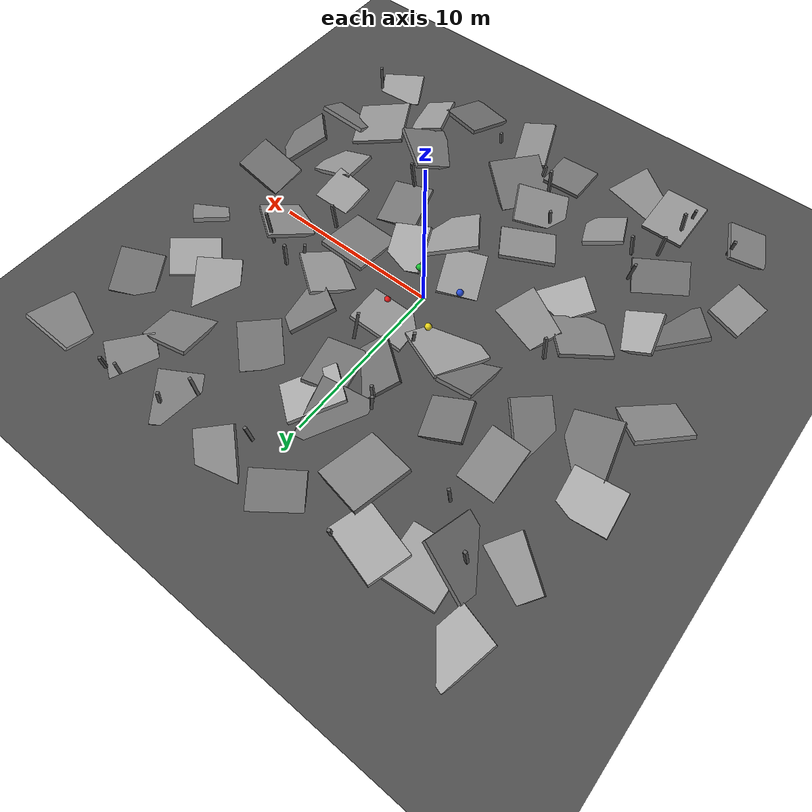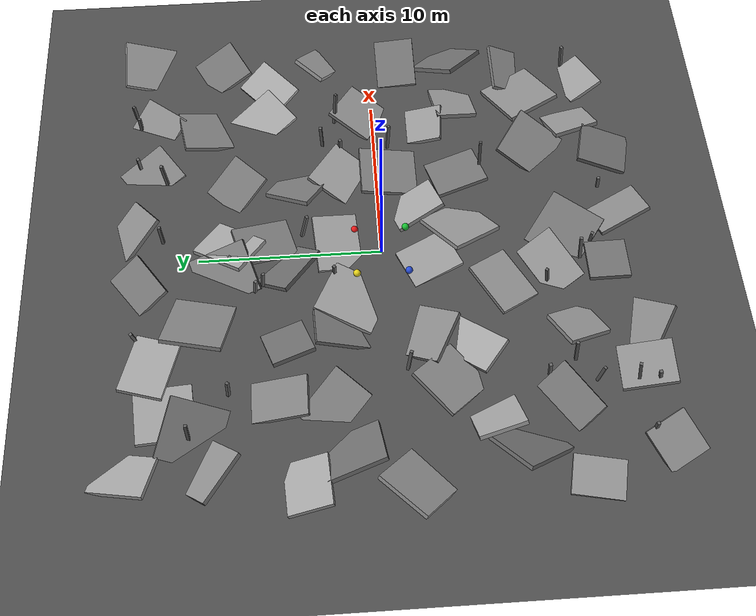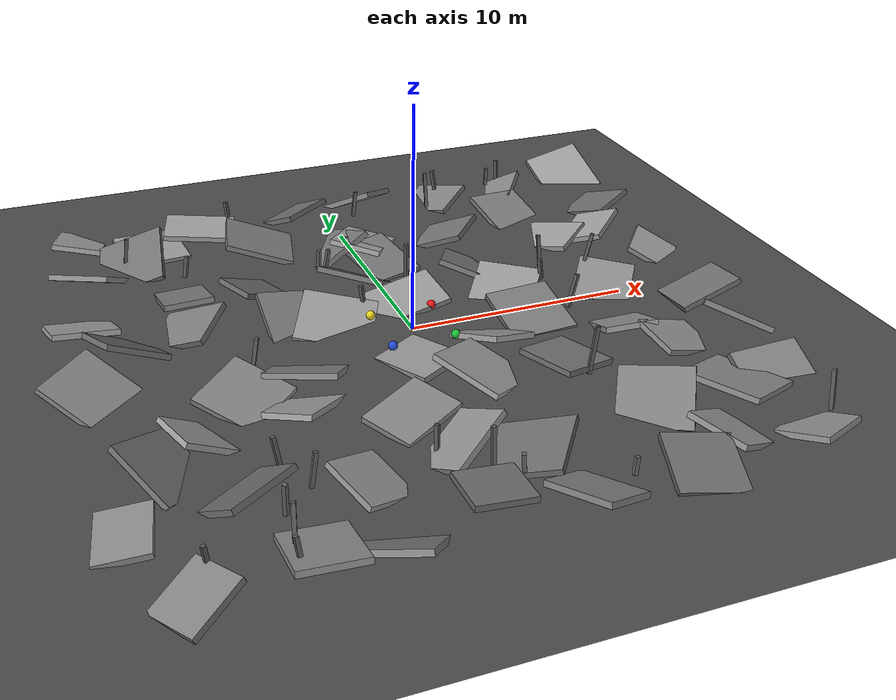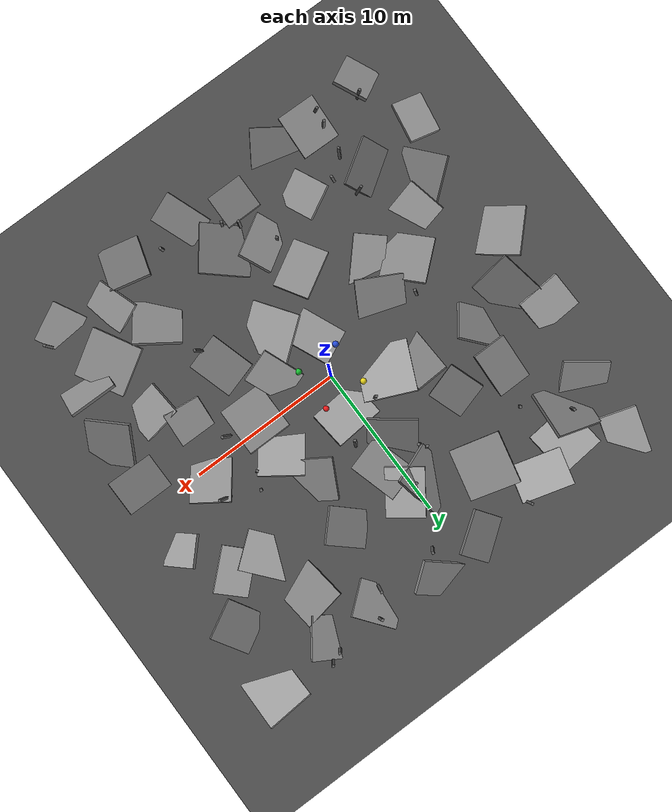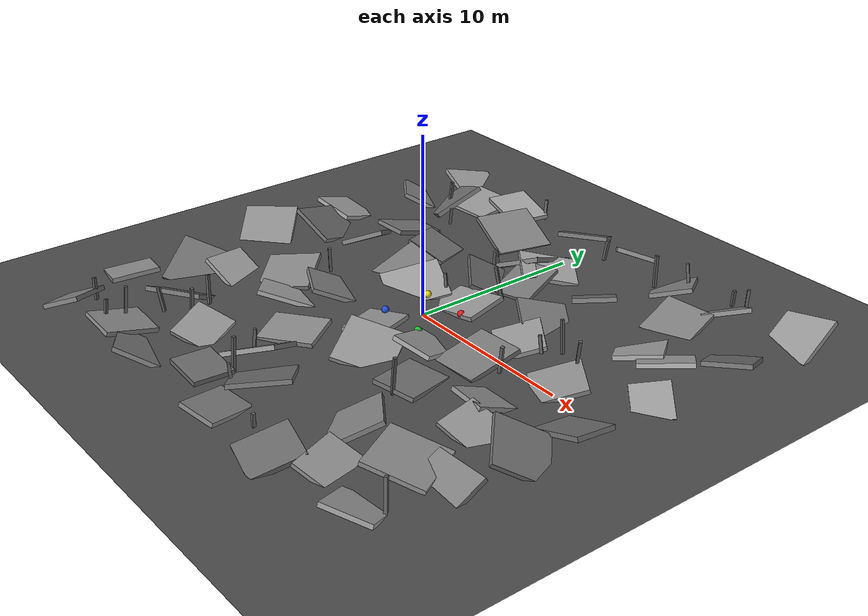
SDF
<?xml version="1.0"?>
<sdf version="1.6">
  <world name="rough_terrain">

    <!-- ==================== Physics ==================== -->
    <physics type="ode">
      <real_time_update_rate>1000.0</real_time_update_rate>
      <max_step_size>0.001</max_step_size>
      <real_time_factor>1</real_time_factor>
    </physics>

    <!-- ==================== Scene ==================== -->
    <scene>
      <ambient>0.55 0.55 0.55 1</ambient>
      <background>0.35 0.38 0.42 1</background>
      <shadows>true</shadows>
    </scene>

    <!-- ==================== Lighting ==================== -->
    <light name="sun" type="directional">
      <cast_shadows>true</cast_shadows>
      <pose>0 0 20 0 0 0</pose>
      <diffuse>0.85 0.85 0.85 1</diffuse>
      <specular>0.25 0.25 0.25 1</specular>
      <direction>-0.4 0.2 -1</direction>
    </light>
    <light name="sun_fill" type="directional">
      <cast_shadows>false</cast_shadows>
      <pose>0 0 15 0 0 0</pose>
      <diffuse>0.30 0.30 0.35 1</diffuse>
      <specular>0 0 0 1</specular>
      <direction>0.5 -0.3 -0.8</direction>
    </light>

    <!-- ==================== Gazebo ROS State Plugin ==================== -->
    <plugin name="gazebo_ros_state" filename="libgazebo_ros_state.so">
      <ros><namespace>/</namespace></ros>
    </plugin>

    <!-- ==================== Ground Plane ==================== -->
    <model name="ground_plane">
      <static>true</static>
      <link name="link">
        <collision name="collision">
          <geometry>
            <plane><normal>0 0 1</normal><size>100 100</size></plane>
          </geometry>
          <surface>
            <friction><ode><mu>1.0</mu><mu2>1.0</mu2></ode></friction>
          </surface>
        </collision>
        <visual name="visual">
          <cast_shadows>false</cast_shadows>
          <geometry>
            <plane><normal>0 0 1</normal><size>100 100</size></plane>
          </geometry>
          <material>
            <script>
              <uri>file://media/materials/scripts/gazebo.material</uri>
              <name>Gazebo/DarkGrey</name>
            </script>
          </material>
        </visual>
      </link>
    </model>

    <!-- ==================== Rough Terrain (slabs + spikes) ==================== -->
    <model name="rough_terrain">
      <static>true</static>
      <pose>0 0 0 0 0 0</pose>

      <link name="slab_0">
        <pose>-12.334 -13.893 0.430 0.1727 0.3833 -2.5953</pose>
        <collision name="col">
          <geometry><box><size>2.367 2.298 0.250</size></box></geometry>
          <surface><friction><ode><mu>0.9</mu><mu2>0.9</mu2></ode></friction></surface>
        </collision>
        <visual name="vis">
          <geometry><box><size>2.367 2.298 0.250</size></box></geometry>
          <material><ambient>0.517 0.517 0.517 1</ambient><diffuse>0.517 0.517 0.517 1</diffuse><specular>0.1 0.1 0.1 20</specular></material>
        </visual>
      </link>
      <link name="slab_1">
        <pose>-13.881 -9.776 0.134 0.1465 0.0439 -1.7565</pose>
        <collision name="col">
          <geometry><box><size>2.675 2.035 0.250</size></box></geometry>
          <surface><friction><ode><mu>0.9</mu><mu2>0.9</mu2></ode></friction></surface>
        </collision>
        <visual name="vis">
          <geometry><box><size>2.675 2.035 0.250</size></box></geometry>
          <material><ambient>0.556 0.556 0.556 1</ambient><diffuse>0.556 0.556 0.556 1</diffuse><specular>0.1 0.1 0.1 20</specular></material>
        </visual>
      </link>
      <link name="slab_2">
        <pose>-11.902 -6.690 0.212 -0.3367 0.4469 -1.0267</pose>
        <collision name="col">
          <geometry><box><size>3.076 2.932 0.250</size></box></geometry>
          <surface><friction><ode><mu>0.9</mu><mu2>0.9</mu2></ode></friction></surface>
        </collision>
        <visual name="vis">
          <geometry><box><size>3.076 2.932 0.250</size></box></geometry>
          <material><ambient>0.441 0.441 0.441 1</ambient><diffuse>0.441 0.441 0.441 1</diffuse><specular>0.1 0.1 0.1 20</specular></material>
        </visual>
      </link>
      <link name="slab_3">
        <pose>-13.711 -0.931 0.426 0.0354 0.4624 -0.7632</pose>
        <collision name="col">
          <geometry><box><size>2.806 3.078 0.250</size></box></geometry>
          <surface><friction><ode><mu>0.9</mu><mu2>0.9</mu2></ode></friction></surface>
        </collision>
        <visual name="vis">
          <geometry><box><size>2.806 3.078 0.250</size></box></geometry>
          <material><ambient>0.547 0.547 0.547 1</ambient><diffuse>0.547 0.547 0.547 1</diffuse><specular>0.1 0.1 0.1 20</specular></material>
        </visual>
      </link>
      <link name="slab_4">
        <pose>-11.852 2.113 0.392 -0.4439 -0.2659 -1.3233</pose>
        <collision name="col">
          <geometry><box><size>3.150 2.771 0.250</size></box></geometry>
          <surface><friction><ode><mu>0.9</mu><mu2>0.9</mu2></ode></friction></surface>
        </collision>
        <visual name="vis">
          <geometry><box><size>3.150 2.771 0.250</size></box></geometry>
          <material><ambient>0.438 0.438 0.438 1</ambient><diffuse>0.438 0.438 0.438 1</diffuse><specular>0.1 0.1 0.1 20</specular></material>
        </visual>
      </link>
      <link name="slab_5">
        <pose>-13.366 4.425 0.226 -0.1269 -0.2839 -1.4641</pose>
        <collision name="col">
          <geometry><box><size>2.371 2.849 0.250</size></box></geometry>
          <surface><friction><ode><mu>0.9</mu><mu2>0.9</mu2></ode></friction></surface>
        </collision>
        <visual name="vis">
          <geometry><box><size>2.371 2.849 0.250</size></box></geometry>
          <material><ambient>0.635 0.635 0.635 1</ambient><diffuse>0.635 0.635 0.635 1</diffuse><specular>0.1 0.1 0.1 20</specular></material>
        </visual>
      </link>
      <link name="slab_6">
        <pose>-12.312 9.339 0.115 -0.1178 0.4785 0.8796</pose>
        <collision name="col">
          <geometry><box><size>2.228 2.973 0.250</size></box></geometry>
          <surface><friction><ode><mu>0.9</mu><mu2>0.9</mu2></ode></friction></surface>
        </collision>
        <visual name="vis">
          <geometry><box><size>2.228 2.973 0.250</size></box></geometry>
          <material><ambient>0.548 0.548 0.548 1</ambient><diffuse>0.548 0.548 0.548 1</diffuse><specular>0.1 0.1 0.1 20</specular></material>
        </visual>
      </link>
      <link name="slab_7">
        <pose>-12.219 13.557 0.043 -0.1804 -0.2270 -1.8159</pose>
        <collision name="col">
          <geometry><box><size>3.036 2.306 0.250</size></box></geometry>
          <surface><friction><ode><mu>0.9</mu><mu2>0.9</mu2></ode></friction></surface>
        </collision>
        <visual name="vis">
          <geometry><box><size>3.036 2.306 0.250</size></box></geometry>
          <material><ambient>0.637 0.637 0.637 1</ambient><diffuse>0.637 0.637 0.637 1</diffuse><specular>0.1 0.1 0.1 20</specular></material>
        </visual>
      </link>
      <link name="slab_8">
        <pose>-8.107 -13.158 0.528 -0.0402 -0.2298 -1.5920</pose>
        <collision name="col">
          <geometry><box><size>2.875 2.528 0.250</size></box></geometry>
          <surface><friction><ode><mu>0.9</mu><mu2>0.9</mu2></ode></friction></surface>
        </collision>
        <visual name="vis">
          <geometry><box><size>2.875 2.528 0.250</size></box></geometry>
          <material><ambient>0.549 0.549 0.549 1</ambient><diffuse>0.549 0.549 0.549 1</diffuse><specular>0.1 0.1 0.1 20</specular></material>
        </visual>
      </link>
      <link name="slab_9">
        <pose>-9.665 -8.848 0.146 0.4863 0.0093 -2.5704</pose>
        <collision name="col">
          <geometry><box><size>3.199 2.533 0.250</size></box></geometry>
          <surface><friction><ode><mu>0.9</mu><mu2>0.9</mu2></ode></friction></surface>
        </collision>
        <visual name="vis">
          <geometry><box><size>3.199 2.533 0.250</size></box></geometry>
          <material><ambient>0.431 0.431 0.431 1</ambient><diffuse>0.431 0.431 0.431 1</diffuse><specular>0.1 0.1 0.1 20</specular></material>
        </visual>
      </link>
      <link name="slab_10">
        <pose>-10.053 -5.114 0.056 -0.1157 0.4849 0.1829</pose>
        <collision name="col">
          <geometry><box><size>3.057 2.564 0.250</size></box></geometry>
          <surface><friction><ode><mu>0.9</mu><mu2>0.9</mu2></ode></friction></surface>
        </collision>
        <visual name="vis">
          <geometry><box><size>3.057 2.564 0.250</size></box></geometry>
          <material><ambient>0.643 0.643 0.643 1</ambient><diffuse>0.643 0.643 0.643 1</diffuse><specular>0.1 0.1 0.1 20</specular></material>
        </visual>
      </link>
      <link name="slab_11">
        <pose>-8.147 -3.052 0.242 -0.2279 0.1378 -2.4407</pose>
        <collision name="col">
          <geometry><box><size>2.962 2.910 0.250</size></box></geometry>
          <surface><friction><ode><mu>0.9</mu><mu2>0.9</mu2></ode></friction></surface>
        </collision>
        <visual name="vis">
          <geometry><box><size>2.962 2.910 0.250</size></box></geometry>
          <material><ambient>0.520 0.520 0.520 1</ambient><diffuse>0.520 0.520 0.520 1</diffuse><specular>0.1 0.1 0.1 20</specular></material>
        </visual>
      </link>
      <link name="slab_12">
        <pose>-9.180 2.964 0.244 -0.3141 0.4033 2.3280</pose>
        <collision name="col">
          <geometry><box><size>3.169 2.352 0.250</size></box></geometry>
          <surface><friction><ode><mu>0.9</mu><mu2>0.9</mu2></ode></friction></surface>
        </collision>
        <visual name="vis">
          <geometry><box><size>3.169 2.352 0.250</size></box></geometry>
          <material><ambient>0.489 0.489 0.489 1</ambient><diffuse>0.489 0.489 0.489 1</diffuse><specular>0.1 0.1 0.1 20</specular></material>
        </visual>
      </link>
      <link name="slab_13">
        <pose>-8.710 5.714 0.276 0.2723 0.0297 -3.1380</pose>
        <collision name="col">
          <geometry><box><size>2.204 3.018 0.250</size></box></geometry>
          <surface><friction><ode><mu>0.9</mu><mu2>0.9</mu2></ode></friction></surface>
        </collision>
        <visual name="vis">
          <geometry><box><size>2.204 3.018 0.250</size></box></geometry>
          <material><ambient>0.495 0.495 0.495 1</ambient><diffuse>0.495 0.495 0.495 1</diffuse><specular>0.1 0.1 0.1 20</specular></material>
        </visual>
      </link>
      <link name="slab_14">
        <pose>-10.282 10.151 0.194 -0.4321 0.3695 2.8083</pose>
        <collision name="col">
          <geometry><box><size>3.173 3.110 0.250</size></box></geometry>
          <surface><friction><ode><mu>0.9</mu><mu2>0.9</mu2></ode></friction></surface>
        </collision>
        <visual name="vis">
          <geometry><box><size>3.173 3.110 0.250</size></box></geometry>
          <material><ambient>0.440 0.440 0.440 1</ambient><diffuse>0.440 0.440 0.440 1</diffuse><specular>0.1 0.1 0.1 20</specular></material>
        </visual>
      </link>
      <link name="slab_15">
        <pose>-9.098 11.594 0.096 -0.0242 0.0487 -1.4762</pose>
        <collision name="col">
          <geometry><box><size>3.015 3.022 0.250</size></box></geometry>
          <surface><friction><ode><mu>0.9</mu><mu2>0.9</mu2></ode></friction></surface>
        </collision>
        <visual name="vis">
          <geometry><box><size>3.015 3.022 0.250</size></box></geometry>
          <material><ambient>0.621 0.621 0.621 1</ambient><diffuse>0.621 0.621 0.621 1</diffuse><specular>0.1 0.1 0.1 20</specular></material>
        </visual>
      </link>
      <link name="slab_16">
        <pose>-5.633 -13.419 0.136 -0.1840 0.4840 0.9417</pose>
        <collision name="col">
          <geometry><box><size>2.720 2.974 0.250</size></box></geometry>
          <surface><friction><ode><mu>0.9</mu><mu2>0.9</mu2></ode></friction></surface>
        </collision>
        <visual name="vis">
          <geometry><box><size>2.720 2.974 0.250</size></box></geometry>
          <material><ambient>0.521 0.521 0.521 1</ambient><diffuse>0.521 0.521 0.521 1</diffuse><specular>0.1 0.1 0.1 20</specular></material>
        </visual>
      </link>
      <link name="slab_17">
        <pose>-5.393 -10.024 0.318 -0.2638 -0.2735 -2.6955</pose>
        <collision name="col">
          <geometry><box><size>2.300 2.451 0.250</size></box></geometry>
          <surface><friction><ode><mu>0.9</mu><mu2>0.9</mu2></ode></friction></surface>
        </collision>
        <visual name="vis">
          <geometry><box><size>2.300 2.451 0.250</size></box></geometry>
          <material><ambient>0.565 0.565 0.565 1</ambient><diffuse>0.565 0.565 0.565 1</diffuse><specular>0.1 0.1 0.1 20</specular></material>
        </visual>
      </link>
      <link name="slab_18">
        <pose>-6.125 -4.409 0.112 0.1652 -0.2793 -2.3103</pose>
        <collision name="col">
          <geometry><box><size>3.148 2.095 0.250</size></box></geometry>
          <surface><friction><ode><mu>0.9</mu><mu2>0.9</mu2></ode></friction></surface>
        </collision>
        <visual name="vis">
          <geometry><box><size>3.148 2.095 0.250</size></box></geometry>
          <material><ambient>0.635 0.635 0.635 1</ambient><diffuse>0.635 0.635 0.635 1</diffuse><specular>0.1 0.1 0.1 20</specular></material>
        </visual>
      </link>
      <link name="slab_19">
        <pose>-5.257 -1.882 0.081 -0.3940 -0.0674 -0.4802</pose>
        <collision name="col">
          <geometry><box><size>3.047 3.078 0.250</size></box></geometry>
          <surface><friction><ode><mu>0.9</mu><mu2>0.9</mu2></ode></friction></surface>
        </collision>
        <visual name="vis">
          <geometry><box><size>3.047 3.078 0.250</size></box></geometry>
          <material><ambient>0.527 0.527 0.527 1</ambient><diffuse>0.527 0.527 0.527 1</diffuse><specular>0.1 0.1 0.1 20</specular></material>
        </visual>
      </link>
      <link name="slab_20">
        <pose>-4.856 2.252 0.141 -0.1571 0.3535 -1.5792</pose>
        <collision name="col">
          <geometry><box><size>3.314 2.131 0.250</size></box></geometry>
          <surface><friction><ode><mu>0.9</mu><mu2>0.9</mu2></ode></friction></surface>
        </collision>
        <visual name="vis">
          <geometry><box><size>3.314 2.131 0.250</size></box></geometry>
          <material><ambient>0.464 0.464 0.464 1</ambient><diffuse>0.464 0.464 0.464 1</diffuse><specular>0.1 0.1 0.1 20</specular></material>
        </visual>
      </link>
      <link name="slab_21">
        <pose>-5.568 5.239 0.364 -0.0556 0.3532 0.3162</pose>
        <collision name="col">
          <geometry><box><size>2.372 2.333 0.250</size></box></geometry>
          <surface><friction><ode><mu>0.9</mu><mu2>0.9</mu2></ode></friction></surface>
        </collision>
        <visual name="vis">
          <geometry><box><size>2.372 2.333 0.250</size></box></geometry>
          <material><ambient>0.432 0.432 0.432 1</ambient><diffuse>0.432 0.432 0.432 1</diffuse><specular>0.1 0.1 0.1 20</specular></material>
        </visual>
      </link>
      <link name="slab_22">
        <pose>-4.171 9.915 0.429 -0.3261 -0.0140 -1.7986</pose>
        <collision name="col">
          <geometry><box><size>3.294 3.237 0.250</size></box></geometry>
          <surface><friction><ode><mu>0.9</mu><mu2>0.9</mu2></ode></friction></surface>
        </collision>
        <visual name="vis">
          <geometry><box><size>3.294 3.237 0.250</size></box></geometry>
          <material><ambient>0.512 0.512 0.512 1</ambient><diffuse>0.512 0.512 0.512 1</diffuse><specular>0.1 0.1 0.1 20</specular></material>
        </visual>
      </link>
      <link name="slab_23">
        <pose>-6.557 12.380 0.456 -0.0440 -0.0753 2.8734</pose>
        <collision name="col">
          <geometry><box><size>3.315 2.354 0.250</size></box></geometry>
          <surface><friction><ode><mu>0.9</mu><mu2>0.9</mu2></ode></friction></surface>
        </collision>
        <visual name="vis">
          <geometry><box><size>3.315 2.354 0.250</size></box></geometry>
          <material><ambient>0.649 0.649 0.649 1</ambient><diffuse>0.649 0.649 0.649 1</diffuse><specular>0.1 0.1 0.1 20</specular></material>
        </visual>
      </link>
      <link name="slab_24">
        <pose>-1.671 -12.133 0.537 0.0774 0.0412 1.5581</pose>
        <collision name="col">
          <geometry><box><size>2.207 2.396 0.250</size></box></geometry>
          <surface><friction><ode><mu>0.9</mu><mu2>0.9</mu2></ode></friction></surface>
        </collision>
        <visual name="vis">
          <geometry><box><size>2.207 2.396 0.250</size></box></geometry>
          <material><ambient>0.433 0.433 0.433 1</ambient><diffuse>0.433 0.433 0.433 1</diffuse><specular>0.1 0.1 0.1 20</specular></material>
        </visual>
      </link>
      <link name="slab_25">
        <pose>-1.599 -9.055 0.430 -0.4104 -0.3071 0.5971</pose>
        <collision name="col">
          <geometry><box><size>3.138 2.210 0.250</size></box></geometry>
          <surface><friction><ode><mu>0.9</mu><mu2>0.9</mu2></ode></friction></surface>
        </collision>
        <visual name="vis">
          <geometry><box><size>3.138 2.210 0.250</size></box></geometry>
          <material><ambient>0.575 0.575 0.575 1</ambient><diffuse>0.575 0.575 0.575 1</diffuse><specular>0.1 0.1 0.1 20</specular></material>
        </visual>
      </link>
      <link name="slab_26">
        <pose>-2.484 -6.402 0.227 0.1167 -0.0789 0.5257</pose>
        <collision name="col">
          <geometry><box><size>3.189 2.329 0.250</size></box></geometry>
          <surface><friction><ode><mu>0.9</mu><mu2>0.9</mu2></ode></friction></surface>
        </collision>
        <visual name="vis">
          <geometry><box><size>3.189 2.329 0.250</size></box></geometry>
          <material><ambient>0.540 0.540 0.540 1</ambient><diffuse>0.540 0.540 0.540 1</diffuse><specular>0.1 0.1 0.1 20</specular></material>
        </visual>
      </link>
      <link name="slab_27">
        <pose>-0.709 -2.563 0.101 0.0893 -0.1040 -1.1550</pose>
        <collision name="col">
          <geometry><box><size>2.956 2.319 0.250</size></box></geometry>
          <surface><friction><ode><mu>0.9</mu><mu2>0.9</mu2></ode></friction></surface>
        </collision>
        <visual name="vis">
          <geometry><box><size>2.956 2.319 0.250</size></box></geometry>
          <material><ambient>0.593 0.593 0.593 1</ambient><diffuse>0.593 0.593 0.593 1</diffuse><specular>0.1 0.1 0.1 20</specular></material>
        </visual>
      </link>
      <link name="slab_28">
        <pose>-2.897 1.707 0.041 -0.1885 -0.1543 2.7222</pose>
        <collision name="col">
          <geometry><box><size>3.333 3.330 0.250</size></box></geometry>
          <surface><friction><ode><mu>0.9</mu><mu2>0.9</mu2></ode></friction></surface>
        </collision>
        <visual name="vis">
          <geometry><box><size>3.333 3.330 0.250</size></box></geometry>
          <material><ambient>0.623 0.623 0.623 1</ambient><diffuse>0.623 0.623 0.623 1</diffuse><specular>0.1 0.1 0.1 20</specular></material>
        </visual>
      </link>
      <link name="slab_29">
        <pose>-0.850 5.106 0.223 0.1092 0.4762 0.9675</pose>
        <collision name="col">
          <geometry><box><size>2.211 3.113 0.250</size></box></geometry>
          <surface><friction><ode><mu>0.9</mu><mu2>0.9</mu2></ode></friction></surface>
        </collision>
        <visual name="vis">
          <geometry><box><size>2.211 3.113 0.250</size></box></geometry>
          <material><ambient>0.422 0.422 0.422 1</ambient><diffuse>0.422 0.422 0.422 1</diffuse><specular>0.1 0.1 0.1 20</specular></material>
        </visual>
      </link>
      <link name="slab_30">
        <pose>-1.008 8.553 0.079 -0.3759 -0.3841 0.3344</pose>
        <collision name="col">
          <geometry><box><size>2.886 3.253 0.250</size></box></geometry>
          <surface><friction><ode><mu>0.9</mu><mu2>0.9</mu2></ode></friction></surface>
        </collision>
        <visual name="vis">
          <geometry><box><size>2.886 3.253 0.250</size></box></geometry>
          <material><ambient>0.483 0.483 0.483 1</ambient><diffuse>0.483 0.483 0.483 1</diffuse><specular>0.1 0.1 0.1 20</specular></material>
        </visual>
      </link>
      <link name="slab_31">
        <pose>-1.546 13.240 0.170 -0.0112 0.3962 2.1746</pose>
        <collision name="col">
          <geometry><box><size>2.272 2.847 0.250</size></box></geometry>
          <surface><friction><ode><mu>0.9</mu><mu2>0.9</mu2></ode></friction></surface>
        </collision>
        <visual name="vis">
          <geometry><box><size>2.272 2.847 0.250</size></box></geometry>
          <material><ambient>0.441 0.441 0.441 1</ambient><diffuse>0.441 0.441 0.441 1</diffuse><specular>0.1 0.1 0.1 20</specular></material>
        </visual>
      </link>
      <link name="slab_32">
        <pose>1.619 -13.254 0.375 -0.2327 0.2358 0.3247</pose>
        <collision name="col">
          <geometry><box><size>2.005 3.029 0.250</size></box></geometry>
          <surface><friction><ode><mu>0.9</mu><mu2>0.9</mu2></ode></friction></surface>
        </collision>
        <visual name="vis">
          <geometry><box><size>2.005 3.029 0.250</size></box></geometry>
          <material><ambient>0.518 0.518 0.518 1</ambient><diffuse>0.518 0.518 0.518 1</diffuse><specular>0.1 0.1 0.1 20</specular></material>
        </visual>
      </link>
      <link name="slab_33">
        <pose>0.568 -10.140 0.273 0.3270 0.0806 -2.2111</pose>
        <collision name="col">
          <geometry><box><size>3.179 3.207 0.250</size></box></geometry>
          <surface><friction><ode><mu>0.9</mu><mu2>0.9</mu2></ode></friction></surface>
        </collision>
        <visual name="vis">
          <geometry><box><size>3.179 3.207 0.250</size></box></geometry>
          <material><ambient>0.449 0.449 0.449 1</ambient><diffuse>0.449 0.449 0.449 1</diffuse><specular>0.1 0.1 0.1 20</specular></material>
        </visual>
      </link>
      <link name="slab_34">
        <pose>1.326 -4.425 0.260 -0.2618 -0.2262 -2.4957</pose>
        <collision name="col">
          <geometry><box><size>3.063 3.149 0.250</size></box></geometry>
          <surface><friction><ode><mu>0.9</mu><mu2>0.9</mu2></ode></friction></surface>
        </collision>
        <visual name="vis">
          <geometry><box><size>3.063 3.149 0.250</size></box></geometry>
          <material><ambient>0.599 0.599 0.599 1</ambient><diffuse>0.599 0.599 0.599 1</diffuse><specular>0.1 0.1 0.1 20</specular></material>
        </visual>
      </link>
      <link name="slab_35">
        <pose>2.787 -2.050 0.231 0.2466 0.3221 1.9526</pose>
        <collision name="col">
          <geometry><box><size>2.829 2.206 0.250</size></box></geometry>
          <surface><friction><ode><mu>0.9</mu><mu2>0.9</mu2></ode></friction></surface>
        </collision>
        <visual name="vis">
          <geometry><box><size>2.829 2.206 0.250</size></box></geometry>
          <material><ambient>0.623 0.623 0.623 1</ambient><diffuse>0.623 0.623 0.623 1</diffuse><specular>0.1 0.1 0.1 20</specular></material>
        </visual>
      </link>
      <link name="slab_36">
        <pose>0.607 2.413 0.175 0.1771 0.1511 -1.4652</pose>
        <collision name="col">
          <geometry><box><size>2.443 3.243 0.250</size></box></geometry>
          <surface><friction><ode><mu>0.9</mu><mu2>0.9</mu2></ode></friction></surface>
        </collision>
        <visual name="vis">
          <geometry><box><size>2.443 3.243 0.250</size></box></geometry>
          <material><ambient>0.601 0.601 0.601 1</ambient><diffuse>0.601 0.601 0.601 1</diffuse><specular>0.1 0.1 0.1 20</specular></material>
        </visual>
      </link>
      <link name="slab_37">
        <pose>0.818 6.382 0.291 -0.0388 -0.1904 1.8557</pose>
        <collision name="col">
          <geometry><box><size>3.146 2.297 0.250</size></box></geometry>
          <surface><friction><ode><mu>0.9</mu><mu2>0.9</mu2></ode></friction></surface>
        </collision>
        <visual name="vis">
          <geometry><box><size>3.146 2.297 0.250</size></box></geometry>
          <material><ambient>0.472 0.472 0.472 1</ambient><diffuse>0.472 0.472 0.472 1</diffuse><specular>0.1 0.1 0.1 20</specular></material>
        </visual>
      </link>
      <link name="slab_38">
        <pose>0.604 8.284 0.403 -0.2159 0.1383 -0.6303</pose>
        <collision name="col">
          <geometry><box><size>2.438 3.154 0.250</size></box></geometry>
          <surface><friction><ode><mu>0.9</mu><mu2>0.9</mu2></ode></friction></surface>
        </collision>
        <visual name="vis">
          <geometry><box><size>2.438 3.154 0.250</size></box></geometry>
          <material><ambient>0.646 0.646 0.646 1</ambient><diffuse>0.646 0.646 0.646 1</diffuse><specular>0.1 0.1 0.1 20</specular></material>
        </visual>
      </link>
      <link name="slab_39">
        <pose>1.904 13.802 0.123 0.4521 -0.2292 -2.4605</pose>
        <collision name="col">
          <geometry><box><size>2.154 3.295 0.250</size></box></geometry>
          <surface><friction><ode><mu>0.9</mu><mu2>0.9</mu2></ode></friction></surface>
        </collision>
        <visual name="vis">
          <geometry><box><size>2.154 3.295 0.250</size></box></geometry>
          <material><ambient>0.520 0.520 0.520 1</ambient><diffuse>0.520 0.520 0.520 1</diffuse><specular>0.1 0.1 0.1 20</specular></material>
        </visual>
      </link>
      <link name="slab_40">
        <pose>6.017 -13.160 0.237 0.0749 -0.2397 1.3118</pose>
        <collision name="col">
          <geometry><box><size>2.809 2.683 0.250</size></box></geometry>
          <surface><friction><ode><mu>0.9</mu><mu2>0.9</mu2></ode></friction></surface>
        </collision>
        <visual name="vis">
          <geometry><box><size>2.809 2.683 0.250</size></box></geometry>
          <material><ambient>0.420 0.420 0.420 1</ambient><diffuse>0.420 0.420 0.420 1</diffuse><specular>0.1 0.1 0.1 20</specular></material>
        </visual>
      </link>
      <link name="slab_41">
        <pose>6.517 -8.965 0.352 -0.1327 -0.4203 1.0319</pose>
        <collision name="col">
          <geometry><box><size>2.960 2.991 0.250</size></box></geometry>
          <surface><friction><ode><mu>0.9</mu><mu2>0.9</mu2></ode></friction></surface>
        </collision>
        <visual name="vis">
          <geometry><box><size>2.960 2.991 0.250</size></box></geometry>
          <material><ambient>0.496 0.496 0.496 1</ambient><diffuse>0.496 0.496 0.496 1</diffuse><specular>0.1 0.1 0.1 20</specular></material>
        </visual>
      </link>
      <link name="slab_42">
        <pose>4.965 -4.554 0.129 -0.0895 -0.0954 -1.2839</pose>
        <collision name="col">
          <geometry><box><size>2.961 2.401 0.250</size></box></geometry>
          <surface><friction><ode><mu>0.9</mu><mu2>0.9</mu2></ode></friction></surface>
        </collision>
        <visual name="vis">
          <geometry><box><size>2.961 2.401 0.250</size></box></geometry>
          <material><ambient>0.449 0.449 0.449 1</ambient><diffuse>0.449 0.449 0.449 1</diffuse><specular>0.1 0.1 0.1 20</specular></material>
        </visual>
      </link>
      <link name="slab_43">
        <pose>5.236 -0.695 0.200 -0.1945 0.0469 -3.1390</pose>
        <collision name="col">
          <geometry><box><size>2.904 3.205 0.250</size></box></geometry>
          <surface><friction><ode><mu>0.9</mu><mu2>0.9</mu2></ode></friction></surface>
        </collision>
        <visual name="vis">
          <geometry><box><size>2.904 3.205 0.250</size></box></geometry>
          <material><ambient>0.486 0.486 0.486 1</ambient><diffuse>0.486 0.486 0.486 1</diffuse><specular>0.1 0.1 0.1 20</specular></material>
        </visual>
      </link>
      <link name="slab_44">
        <pose>5.260 2.015 0.156 -0.2798 -0.0262 2.5207</pose>
        <collision name="col">
          <geometry><box><size>2.874 2.621 0.250</size></box></geometry>
          <surface><friction><ode><mu>0.9</mu><mu2>0.9</mu2></ode></friction></surface>
        </collision>
        <visual name="vis">
          <geometry><box><size>2.874 2.621 0.250</size></box></geometry>
          <material><ambient>0.603 0.603 0.603 1</ambient><diffuse>0.603 0.603 0.603 1</diffuse><specular>0.1 0.1 0.1 20</specular></material>
        </visual>
      </link>
      <link name="slab_45">
        <pose>4.599 4.384 0.133 0.3112 0.2455 1.0857</pose>
        <collision name="col">
          <geometry><box><size>2.688 2.845 0.250</size></box></geometry>
          <surface><friction><ode><mu>0.9</mu><mu2>0.9</mu2></ode></friction></surface>
        </collision>
        <visual name="vis">
          <geometry><box><size>2.688 2.845 0.250</size></box></geometry>
          <material><ambient>0.472 0.472 0.472 1</ambient><diffuse>0.472 0.472 0.472 1</diffuse><specular>0.1 0.1 0.1 20</specular></material>
        </visual>
      </link>
      <link name="slab_46">
        <pose>4.674 7.856 0.382 -0.4175 -0.0836 0.8153</pose>
        <collision name="col">
          <geometry><box><size>2.327 2.634 0.250</size></box></geometry>
          <surface><friction><ode><mu>0.9</mu><mu2>0.9</mu2></ode></friction></surface>
        </collision>
        <visual name="vis">
          <geometry><box><size>2.327 2.634 0.250</size></box></geometry>
          <material><ambient>0.465 0.465 0.465 1</ambient><diffuse>0.465 0.465 0.465 1</diffuse><specular>0.1 0.1 0.1 20</specular></material>
        </visual>
      </link>
      <link name="slab_47">
        <pose>5.936 12.673 0.028 0.2453 0.2639 -2.4719</pose>
        <collision name="col">
          <geometry><box><size>2.326 2.876 0.250</size></box></geometry>
          <surface><friction><ode><mu>0.9</mu><mu2>0.9</mu2></ode></friction></surface>
        </collision>
        <visual name="vis">
          <geometry><box><size>2.326 2.876 0.250</size></box></geometry>
          <material><ambient>0.518 0.518 0.518 1</ambient><diffuse>0.518 0.518 0.518 1</diffuse><specular>0.1 0.1 0.1 20</specular></material>
        </visual>
      </link>
      <link name="slab_48">
        <pose>8.240 -11.525 0.162 0.3405 -0.0426 1.8939</pose>
        <collision name="col">
          <geometry><box><size>2.691 2.067 0.250</size></box></geometry>
          <surface><friction><ode><mu>0.9</mu><mu2>0.9</mu2></ode></friction></surface>
        </collision>
        <visual name="vis">
          <geometry><box><size>2.691 2.067 0.250</size></box></geometry>
          <material><ambient>0.574 0.574 0.574 1</ambient><diffuse>0.574 0.574 0.574 1</diffuse><specular>0.1 0.1 0.1 20</specular></material>
        </visual>
      </link>
      <link name="slab_49">
        <pose>10.301 -8.820 0.362 0.2143 0.0047 2.0770</pose>
        <collision name="col">
          <geometry><box><size>3.268 3.190 0.250</size></box></geometry>
          <surface><friction><ode><mu>0.9</mu><mu2>0.9</mu2></ode></friction></surface>
        </collision>
        <visual name="vis">
          <geometry><box><size>3.268 3.190 0.250</size></box></geometry>
          <material><ambient>0.546 0.546 0.546 1</ambient><diffuse>0.546 0.546 0.546 1</diffuse><specular>0.1 0.1 0.1 20</specular></material>
        </visual>
      </link>
      <link name="slab_50">
        <pose>10.070 -4.819 0.146 0.1345 0.2598 0.1338</pose>
        <collision name="col">
          <geometry><box><size>2.634 2.346 0.250</size></box></geometry>
          <surface><friction><ode><mu>0.9</mu><mu2>0.9</mu2></ode></friction></surface>
        </collision>
        <visual name="vis">
          <geometry><box><size>2.634 2.346 0.250</size></box></geometry>
          <material><ambient>0.564 0.564 0.564 1</ambient><diffuse>0.564 0.564 0.564 1</diffuse><specular>0.1 0.1 0.1 20</specular></material>
        </visual>
      </link>
      <link name="slab_51">
        <pose>8.491 -2.885 0.157 0.0392 -0.3534 -1.6885</pose>
        <collision name="col">
          <geometry><box><size>2.381 2.363 0.250</size></box></geometry>
          <surface><friction><ode><mu>0.9</mu><mu2>0.9</mu2></ode></friction></surface>
        </collision>
        <visual name="vis">
          <geometry><box><size>2.381 2.363 0.250</size></box></geometry>
          <material><ambient>0.580 0.580 0.580 1</ambient><diffuse>0.580 0.580 0.580 1</diffuse><specular>0.1 0.1 0.1 20</specular></material>
        </visual>
      </link>
      <link name="slab_52">
        <pose>9.586 0.707 0.206 -0.2865 -0.0781 2.5437</pose>
        <collision name="col">
          <geometry><box><size>2.544 2.724 0.250</size></box></geometry>
          <surface><friction><ode><mu>0.9</mu><mu2>0.9</mu2></ode></friction></surface>
        </collision>
        <visual name="vis">
          <geometry><box><size>2.544 2.724 0.250</size></box></geometry>
          <material><ambient>0.554 0.554 0.554 1</ambient><diffuse>0.554 0.554 0.554 1</diffuse><specular>0.1 0.1 0.1 20</specular></material>
        </visual>
      </link>
      <link name="slab_53">
        <pose>9.559 6.343 0.028 -0.1449 0.2477 2.2208</pose>
        <collision name="col">
          <geometry><box><size>3.022 2.508 0.250</size></box></geometry>
          <surface><friction><ode><mu>0.9</mu><mu2>0.9</mu2></ode></friction></surface>
        </collision>
        <visual name="vis">
          <geometry><box><size>3.022 2.508 0.250</size></box></geometry>
          <material><ambient>0.639 0.639 0.639 1</ambient><diffuse>0.639 0.639 0.639 1</diffuse><specular>0.1 0.1 0.1 20</specular></material>
        </visual>
      </link>
      <link name="slab_54">
        <pose>8.857 9.691 0.146 -0.2742 -0.0627 -2.9592</pose>
        <collision name="col">
          <geometry><box><size>2.729 2.805 0.250</size></box></geometry>
          <surface><friction><ode><mu>0.9</mu><mu2>0.9</mu2></ode></friction></surface>
        </collision>
        <visual name="vis">
          <geometry><box><size>2.729 2.805 0.250</size></box></geometry>
          <material><ambient>0.497 0.497 0.497 1</ambient><diffuse>0.497 0.497 0.497 1</diffuse><specular>0.1 0.1 0.1 20</specular></material>
        </visual>
      </link>
      <link name="slab_55">
        <pose>9.517 12.445 0.095 0.1195 -0.4623 -0.6659</pose>
        <collision name="col">
          <geometry><box><size>2.220 2.624 0.250</size></box></geometry>
          <surface><friction><ode><mu>0.9</mu><mu2>0.9</mu2></ode></friction></surface>
        </collision>
        <visual name="vis">
          <geometry><box><size>2.220 2.624 0.250</size></box></geometry>
          <material><ambient>0.550 0.550 0.550 1</ambient><diffuse>0.550 0.550 0.550 1</diffuse><specular>0.1 0.1 0.1 20</specular></material>
        </visual>
      </link>
      <link name="slab_56">
        <pose>11.488 -12.325 0.053 -0.1182 -0.2818 -1.0880</pose>
        <collision name="col">
          <geometry><box><size>2.181 2.616 0.250</size></box></geometry>
          <surface><friction><ode><mu>0.9</mu><mu2>0.9</mu2></ode></friction></surface>
        </collision>
        <visual name="vis">
          <geometry><box><size>2.181 2.616 0.250</size></box></geometry>
          <material><ambient>0.595 0.595 0.595 1</ambient><diffuse>0.595 0.595 0.595 1</diffuse><specular>0.1 0.1 0.1 20</specular></material>
        </visual>
      </link>
      <link name="slab_57">
        <pose>12.381 -8.423 0.070 -0.4697 0.0385 3.1410</pose>
        <collision name="col">
          <geometry><box><size>3.111 2.337 0.250</size></box></geometry>
          <surface><friction><ode><mu>0.9</mu><mu2>0.9</mu2></ode></friction></surface>
        </collision>
        <visual name="vis">
          <geometry><box><size>3.111 2.337 0.250</size></box></geometry>
          <material><ambient>0.500 0.500 0.500 1</ambient><diffuse>0.500 0.500 0.500 1</diffuse><specular>0.1 0.1 0.1 20</specular></material>
        </visual>
      </link>
      <link name="slab_58">
        <pose>13.068 -4.724 0.547 -0.2938 -0.4688 -2.1841</pose>
        <collision name="col">
          <geometry><box><size>2.870 3.007 0.250</size></box></geometry>
          <surface><friction><ode><mu>0.9</mu><mu2>0.9</mu2></ode></friction></surface>
        </collision>
        <visual name="vis">
          <geometry><box><size>2.870 3.007 0.250</size></box></geometry>
          <material><ambient>0.449 0.449 0.449 1</ambient><diffuse>0.449 0.449 0.449 1</diffuse><specular>0.1 0.1 0.1 20</specular></material>
        </visual>
      </link>
      <link name="slab_59">
        <pose>13.118 -1.650 0.447 -0.3247 0.1048 1.5578</pose>
        <collision name="col">
          <geometry><box><size>2.291 2.934 0.250</size></box></geometry>
          <surface><friction><ode><mu>0.9</mu><mu2>0.9</mu2></ode></friction></surface>
        </collision>
        <visual name="vis">
          <geometry><box><size>2.291 2.934 0.250</size></box></geometry>
          <material><ambient>0.446 0.446 0.446 1</ambient><diffuse>0.446 0.446 0.446 1</diffuse><specular>0.1 0.1 0.1 20</specular></material>
        </visual>
      </link>
      <link name="slab_60">
        <pose>13.498 2.992 0.197 0.1733 0.4478 -0.6493</pose>
        <collision name="col">
          <geometry><box><size>2.144 2.034 0.250</size></box></geometry>
          <surface><friction><ode><mu>0.9</mu><mu2>0.9</mu2></ode></friction></surface>
        </collision>
        <visual name="vis">
          <geometry><box><size>2.144 2.034 0.250</size></box></geometry>
          <material><ambient>0.584 0.584 0.584 1</ambient><diffuse>0.584 0.584 0.584 1</diffuse><specular>0.1 0.1 0.1 20</specular></material>
        </visual>
      </link>
      <link name="slab_61">
        <pose>11.612 5.921 0.450 0.3424 0.0981 -2.3810</pose>
        <collision name="col">
          <geometry><box><size>2.837 2.136 0.250</size></box></geometry>
          <surface><friction><ode><mu>0.9</mu><mu2>0.9</mu2></ode></friction></surface>
        </collision>
        <visual name="vis">
          <geometry><box><size>2.837 2.136 0.250</size></box></geometry>
          <material><ambient>0.646 0.646 0.646 1</ambient><diffuse>0.646 0.646 0.646 1</diffuse><specular>0.1 0.1 0.1 20</specular></material>
        </visual>
      </link>
      <link name="slab_62">
        <pose>13.405 8.675 0.303 -0.1552 0.3417 2.0253</pose>
        <collision name="col">
          <geometry><box><size>2.572 2.495 0.250</size></box></geometry>
          <surface><friction><ode><mu>0.9</mu><mu2>0.9</mu2></ode></friction></surface>
        </collision>
        <visual name="vis">
          <geometry><box><size>2.572 2.495 0.250</size></box></geometry>
          <material><ambient>0.444 0.444 0.444 1</ambient><diffuse>0.444 0.444 0.444 1</diffuse><specular>0.1 0.1 0.1 20</specular></material>
        </visual>
      </link>
      <link name="slab_63">
        <pose>13.857 13.032 0.265 0.2285 0.4549 -1.4446</pose>
        <collision name="col">
          <geometry><box><size>3.106 2.944 0.250</size></box></geometry>
          <surface><friction><ode><mu>0.9</mu><mu2>0.9</mu2></ode></friction></surface>
        </collision>
        <visual name="vis">
          <geometry><box><size>3.106 2.944 0.250</size></box></geometry>
          <material><ambient>0.606 0.606 0.606 1</ambient><diffuse>0.606 0.606 0.606 1</diffuse><specular>0.1 0.1 0.1 20</specular></material>
        </visual>
      </link>
      <link name="spike_0">
        <pose>-1.804 6.469 0.689 0.1266 0.1191 0.2723</pose>
        <collision name="col">
          <geometry><box><size>0.160 0.160 0.956</size></box></geometry>
        </collision>
        <visual name="vis">
          <geometry><box><size>0.160 0.160 0.956</size></box></geometry>
          <material><ambient>0.412 0.412 0.412 1</ambient><diffuse>0.412 0.412 0.412 1</diffuse><specular>0.05 0.05 0.05 10</specular></material>
        </visual>
      </link>
      <link name="spike_1">
        <pose>-7.172 -0.988 0.749 -0.0436 -0.1697 2.6733</pose>
        <collision name="col">
          <geometry><box><size>0.160 0.160 1.538</size></box></geometry>
        </collision>
        <visual name="vis">
          <geometry><box><size>0.160 0.160 1.538</size></box></geometry>
          <material><ambient>0.410 0.410 0.410 1</ambient><diffuse>0.410 0.410 0.410 1</diffuse><specular>0.05 0.05 0.05 10</specular></material>
        </visual>
      </link>
      <link name="spike_2">
        <pose>-8.061 8.339 0.463 0.1369 0.0724 0.8679</pose>
        <collision name="col">
          <geometry><box><size>0.160 0.160 1.079</size></box></geometry>
        </collision>
        <visual name="vis">
          <geometry><box><size>0.160 0.160 1.079</size></box></geometry>
          <material><ambient>0.369 0.369 0.369 1</ambient><diffuse>0.369 0.369 0.369 1</diffuse><specular>0.05 0.05 0.05 10</specular></material>
        </visual>
      </link>
      <link name="spike_3">
        <pose>12.546 -11.603 0.995 -0.0041 0.0929 2.1696</pose>
        <collision name="col">
          <geometry><box><size>0.160 0.160 1.724</size></box></geometry>
        </collision>
        <visual name="vis">
          <geometry><box><size>0.160 0.160 1.724</size></box></geometry>
          <material><ambient>0.405 0.405 0.405 1</ambient><diffuse>0.405 0.405 0.405 1</diffuse><specular>0.05 0.05 0.05 10</specular></material>
        </visual>
      </link>
      <link name="spike_4">
        <pose>-0.257 8.202 0.441 -0.1002 0.0690 0.9620</pose>
        <collision name="col">
          <geometry><box><size>0.160 0.160 0.658</size></box></geometry>
        </collision>
        <visual name="vis">
          <geometry><box><size>0.160 0.160 0.658</size></box></geometry>
          <material><ambient>0.379 0.379 0.379 1</ambient><diffuse>0.379 0.379 0.379 1</diffuse><specular>0.05 0.05 0.05 10</specular></material>
        </visual>
      </link>
      <link name="spike_5">
        <pose>-2.086 6.886 0.491 0.0730 -0.0825 0.7898</pose>
        <collision name="col">
          <geometry><box><size>0.160 0.160 1.062</size></box></geometry>
        </collision>
        <visual name="vis">
          <geometry><box><size>0.160 0.160 1.062</size></box></geometry>
          <material><ambient>0.415 0.415 0.415 1</ambient><diffuse>0.415 0.415 0.415 1</diffuse><specular>0.05 0.05 0.05 10</specular></material>
        </visual>
      </link>
      <link name="spike_6">
        <pose>-8.608 -10.652 0.785 0.0944 -0.1133 0.6798</pose>
        <collision name="col">
          <geometry><box><size>0.160 0.160 1.411</size></box></geometry>
        </collision>
        <visual name="vis">
          <geometry><box><size>0.160 0.160 1.411</size></box></geometry>
          <material><ambient>0.386 0.386 0.386 1</ambient><diffuse>0.386 0.386 0.386 1</diffuse><specular>0.05 0.05 0.05 10</specular></material>
        </visual>
      </link>
      <link name="spike_7">
        <pose>6.288 13.345 0.691 -0.0781 -0.1438 0.6098</pose>
        <collision name="col">
          <geometry><box><size>0.160 0.160 1.392</size></box></geometry>
        </collision>
        <visual name="vis">
          <geometry><box><size>0.160 0.160 1.392</size></box></geometry>
          <material><ambient>0.407 0.407 0.407 1</ambient><diffuse>0.407 0.407 0.407 1</diffuse><specular>0.05 0.05 0.05 10</specular></material>
        </visual>
      </link>
      <link name="spike_8">
        <pose>-8.976 -13.604 0.854 -0.0812 0.1707 1.7384</pose>
        <collision name="col">
          <geometry><box><size>0.160 0.160 1.408</size></box></geometry>
        </collision>
        <visual name="vis">
          <geometry><box><size>0.160 0.160 1.408</size></box></geometry>
          <material><ambient>0.370 0.370 0.370 1</ambient><diffuse>0.370 0.370 0.370 1</diffuse><specular>0.05 0.05 0.05 10</specular></material>
        </visual>
      </link>
      <link name="spike_9">
        <pose>-10.464 10.317 0.733 0.1342 0.0267 1.4747</pose>
        <collision name="col">
          <geometry><box><size>0.160 0.160 1.334</size></box></geometry>
        </collision>
        <visual name="vis">
          <geometry><box><size>0.160 0.160 1.334</size></box></geometry>
          <material><ambient>0.371 0.371 0.371 1</ambient><diffuse>0.371 0.371 0.371 1</diffuse><specular>0.05 0.05 0.05 10</specular></material>
        </visual>
      </link>
      <link name="spike_10">
        <pose>-8.838 -12.561 0.994 -0.0080 0.1160 1.2589</pose>
        <collision name="col">
          <geometry><box><size>0.160 0.160 2.100</size></box></geometry>
        </collision>
        <visual name="vis">
          <geometry><box><size>0.160 0.160 2.100</size></box></geometry>
          <material><ambient>0.391 0.391 0.391 1</ambient><diffuse>0.391 0.391 0.391 1</diffuse><specular>0.05 0.05 0.05 10</specular></material>
        </visual>
      </link>
      <link name="spike_11">
        <pose>3.624 -12.499 0.336 0.0226 -0.0706 3.1225</pose>
        <collision name="col">
          <geometry><box><size>0.160 0.160 0.754</size></box></geometry>
        </collision>
        <visual name="vis">
          <geometry><box><size>0.160 0.160 0.754</size></box></geometry>
          <material><ambient>0.420 0.420 0.420 1</ambient><diffuse>0.420 0.420 0.420 1</diffuse><specular>0.05 0.05 0.05 10</specular></material>
        </visual>
      </link>
      <link name="spike_12">
        <pose>7.404 2.977 0.988 -0.0988 0.0081 1.4153</pose>
        <collision name="col">
          <geometry><box><size>0.160 0.160 1.844</size></box></geometry>
        </collision>
        <visual name="vis">
          <geometry><box><size>0.160 0.160 1.844</size></box></geometry>
          <material><ambient>0.384 0.384 0.384 1</ambient><diffuse>0.384 0.384 0.384 1</diffuse><specular>0.05 0.05 0.05 10</specular></material>
        </visual>
      </link>
      <link name="spike_13">
        <pose>10.085 13.721 0.742 0.0436 0.0395 2.3251</pose>
        <collision name="col">
          <geometry><box><size>0.160 0.160 1.019</size></box></geometry>
        </collision>
        <visual name="vis">
          <geometry><box><size>0.160 0.160 1.019</size></box></geometry>
          <material><ambient>0.360 0.360 0.360 1</ambient><diffuse>0.360 0.360 0.360 1</diffuse><specular>0.05 0.05 0.05 10</specular></material>
        </visual>
      </link>
      <link name="spike_14">
        <pose>-8.182 -8.091 0.732 -0.1235 -0.1174 0.2358</pose>
        <collision name="col">
          <geometry><box><size>0.160 0.160 1.623</size></box></geometry>
        </collision>
        <visual name="vis">
          <geometry><box><size>0.160 0.160 1.623</size></box></geometry>
          <material><ambient>0.388 0.388 0.388 1</ambient><diffuse>0.388 0.388 0.388 1</diffuse><specular>0.05 0.05 0.05 10</specular></material>
        </visual>
      </link>
      <link name="spike_15">
        <pose>-1.386 2.627 0.567 -0.0967 0.0745 2.2085</pose>
        <collision name="col">
          <geometry><box><size>0.160 0.160 0.995</size></box></geometry>
        </collision>
        <visual name="vis">
          <geometry><box><size>0.160 0.160 0.995</size></box></geometry>
          <material><ambient>0.374 0.374 0.374 1</ambient><diffuse>0.374 0.374 0.374 1</diffuse><specular>0.05 0.05 0.05 10</specular></material>
        </visual>
      </link>
      <link name="spike_16">
        <pose>5.247 11.870 0.980 0.0450 0.0580 2.9332</pose>
        <collision name="col">
          <geometry><box><size>0.160 0.160 1.839</size></box></geometry>
        </collision>
        <visual name="vis">
          <geometry><box><size>0.160 0.160 1.839</size></box></geometry>
          <material><ambient>0.389 0.389 0.389 1</ambient><diffuse>0.389 0.389 0.389 1</diffuse><specular>0.05 0.05 0.05 10</specular></material>
        </visual>
      </link>
      <link name="spike_17">
        <pose>1.248 4.134 1.044 0.1176 -0.1543 0.5213</pose>
        <collision name="col">
          <geometry><box><size>0.160 0.160 2.044</size></box></geometry>
        </collision>
        <visual name="vis">
          <geometry><box><size>0.160 0.160 2.044</size></box></geometry>
          <material><ambient>0.388 0.388 0.388 1</ambient><diffuse>0.388 0.388 0.388 1</diffuse><specular>0.05 0.05 0.05 10</specular></material>
        </visual>
      </link>
      <link name="spike_18">
        <pose>6.971 1.938 0.726 -0.1352 0.0679 2.1983</pose>
        <collision name="col">
          <geometry><box><size>0.160 0.160 0.991</size></box></geometry>
        </collision>
        <visual name="vis">
          <geometry><box><size>0.160 0.160 0.991</size></box></geometry>
          <material><ambient>0.382 0.382 0.382 1</ambient><diffuse>0.382 0.382 0.382 1</diffuse><specular>0.05 0.05 0.05 10</specular></material>
        </visual>
      </link>
      <link name="spike_19">
        <pose>-11.748 -12.884 0.855 -0.0640 -0.0899 0.2869</pose>
        <collision name="col">
          <geometry><box><size>0.160 0.160 1.234</size></box></geometry>
        </collision>
        <visual name="vis">
          <geometry><box><size>0.160 0.160 1.234</size></box></geometry>
          <material><ambient>0.373 0.373 0.373 1</ambient><diffuse>0.373 0.373 0.373 1</diffuse><specular>0.05 0.05 0.05 10</specular></material>
        </visual>
      </link>
      <link name="spike_20">
        <pose>9.407 2.106 0.991 0.1798 0.0620 0.8467</pose>
        <collision name="col">
          <geometry><box><size>0.160 0.160 2.116</size></box></geometry>
        </collision>
        <visual name="vis">
          <geometry><box><size>0.160 0.160 2.116</size></box></geometry>
          <material><ambient>0.363 0.363 0.363 1</ambient><diffuse>0.363 0.363 0.363 1</diffuse><specular>0.05 0.05 0.05 10</specular></material>
        </visual>
      </link>
      <link name="spike_21">
        <pose>7.176 -0.826 0.933 0.1498 -0.1147 1.8389</pose>
        <collision name="col">
          <geometry><box><size>0.160 0.160 1.608</size></box></geometry>
        </collision>
        <visual name="vis">
          <geometry><box><size>0.160 0.160 1.608</size></box></geometry>
          <material><ambient>0.399 0.399 0.399 1</ambient><diffuse>0.399 0.399 0.399 1</diffuse><specular>0.05 0.05 0.05 10</specular></material>
        </visual>
      </link>
      <link name="spike_22">
        <pose>-0.232 -11.445 0.575 -0.0600 0.0612 2.6946</pose>
        <collision name="col">
          <geometry><box><size>0.160 0.160 1.092</size></box></geometry>
        </collision>
        <visual name="vis">
          <geometry><box><size>0.160 0.160 1.092</size></box></geometry>
          <material><ambient>0.390 0.390 0.390 1</ambient><diffuse>0.390 0.390 0.390 1</diffuse><specular>0.05 0.05 0.05 10</specular></material>
        </visual>
      </link>
      <link name="spike_23">
        <pose>5.423 -5.930 1.077 0.1129 0.0180 1.4289</pose>
        <collision name="col">
          <geometry><box><size>0.160 0.160 2.107</size></box></geometry>
        </collision>
        <visual name="vis">
          <geometry><box><size>0.160 0.160 2.107</size></box></geometry>
          <material><ambient>0.366 0.366 0.366 1</ambient><diffuse>0.366 0.366 0.366 1</diffuse><specular>0.05 0.05 0.05 10</specular></material>
        </visual>
      </link>
      <link name="spike_24">
        <pose>-4.948 13.165 0.693 0.0053 0.1757 2.0661</pose>
        <collision name="col">
          <geometry><box><size>0.160 0.160 1.187</size></box></geometry>
        </collision>
        <visual name="vis">
          <geometry><box><size>0.160 0.160 1.187</size></box></geometry>
          <material><ambient>0.404 0.404 0.404 1</ambient><diffuse>0.404 0.404 0.404 1</diffuse><specular>0.05 0.05 0.05 10</specular></material>
        </visual>
      </link>
      <link name="spike_25">
        <pose>-2.429 -8.748 0.545 0.0923 0.0451 2.3876</pose>
        <collision name="col">
          <geometry><box><size>0.160 0.160 1.115</size></box></geometry>
        </collision>
        <visual name="vis">
          <geometry><box><size>0.160 0.160 1.115</size></box></geometry>
          <material><ambient>0.353 0.353 0.353 1</ambient><diffuse>0.353 0.353 0.353 1</diffuse><specular>0.05 0.05 0.05 10</specular></material>
        </visual>
      </link>
      <link name="spike_26">
        <pose>1.378 11.975 0.743 0.0714 -0.1363 3.0572</pose>
        <collision name="col">
          <geometry><box><size>0.160 0.160 1.245</size></box></geometry>
        </collision>
        <visual name="vis">
          <geometry><box><size>0.160 0.160 1.245</size></box></geometry>
          <material><ambient>0.402 0.402 0.402 1</ambient><diffuse>0.402 0.402 0.402 1</diffuse><specular>0.05 0.05 0.05 10</specular></material>
        </visual>
      </link>
      <link name="spike_27">
        <pose>-7.300 -9.565 0.939 0.0188 -0.1464 3.1173</pose>
        <collision name="col">
          <geometry><box><size>0.160 0.160 1.436</size></box></geometry>
        </collision>
        <visual name="vis">
          <geometry><box><size>0.160 0.160 1.436</size></box></geometry>
          <material><ambient>0.399 0.399 0.399 1</ambient><diffuse>0.399 0.399 0.399 1</diffuse><specular>0.05 0.05 0.05 10</specular></material>
        </visual>
      </link>
      <link name="spike_28">
        <pose>-1.079 -10.711 0.968 -0.0006 0.0780 1.5987</pose>
        <collision name="col">
          <geometry><box><size>0.160 0.160 1.915</size></box></geometry>
        </collision>
        <visual name="vis">
          <geometry><box><size>0.160 0.160 1.915</size></box></geometry>
          <material><ambient>0.407 0.407 0.407 1</ambient><diffuse>0.407 0.407 0.407 1</diffuse><specular>0.05 0.05 0.05 10</specular></material>
        </visual>
      </link>
      <link name="spike_29">
        <pose>9.372 13.447 0.545 0.0185 -0.0419 2.8961</pose>
        <collision name="col">
          <geometry><box><size>0.160 0.160 0.914</size></box></geometry>
        </collision>
        <visual name="vis">
          <geometry><box><size>0.160 0.160 0.914</size></box></geometry>
          <material><ambient>0.377 0.377 0.377 1</ambient><diffuse>0.377 0.377 0.377 1</diffuse><specular>0.05 0.05 0.05 10</specular></material>
        </visual>
      </link>
    </model>

    <!-- ==================== 四色球 ==================== -->
    <model name="red_ball">
      <static>false</static>
      <pose>1.414 1.414 0.200 0 0 0</pose>
      <link name="link">
        <inertial>
          <mass>0.5</mass>
          <inertia><ixx>0.0080</ixx><ixy>0</ixy><ixz>0</ixz><iyy>0.0080</iyy><iyz>0</iyz><izz>0.0080</izz></inertia>
        </inertial>
        <collision name="collision">
          <geometry><sphere><radius>0.2</radius></sphere></geometry>
          <surface>
            <friction><ode><mu>0.6</mu><mu2>0.6</mu2></ode></friction>
            <bounce><restitution_coefficient>0.5</restitution_coefficient><threshold>0</threshold></bounce>
          </surface>
        </collision>
        <visual name="visual">
          <geometry><sphere><radius>0.2</radius></sphere></geometry>
          <material>
            <ambient>0.9 0.1 0.1 1</ambient>
            <diffuse>0.9 0.1 0.1 1</diffuse>
            <specular>0.5 0.4 0.3 50</specular>
          </material>
        </visual>
      </link>
    </model>
    <model name="yellow_ball">
      <static>false</static>
      <pose>-1.414 1.414 0.200 0 0 0</pose>
      <link name="link">
        <inertial>
          <mass>0.5</mass>
          <inertia><ixx>0.0080</ixx><ixy>0</ixy><ixz>0</ixz><iyy>0.0080</iyy><iyz>0</iyz><izz>0.0080</izz></inertia>
        </inertial>
        <collision name="collision">
          <geometry><sphere><radius>0.2</radius></sphere></geometry>
          <surface>
            <friction><ode><mu>0.6</mu><mu2>0.6</mu2></ode></friction>
            <bounce><restitution_coefficient>0.5</restitution_coefficient><threshold>0</threshold></bounce>
          </surface>
        </collision>
        <visual name="visual">
          <geometry><sphere><radius>0.2</radius></sphere></geometry>
          <material>
            <ambient>0.9 0.82 0.1 1</ambient>
            <diffuse>0.9 0.82 0.1 1</diffuse>
            <specular>0.5 0.4 0.3 50</specular>
          </material>
        </visual>
      </link>
    </model>
    <model name="blue_ball">
      <static>false</static>
      <pose>-1.414 -1.414 0.200 0 0 0</pose>
      <link name="link">
        <inertial>
          <mass>0.5</mass>
          <inertia><ixx>0.0080</ixx><ixy>0</ixy><ixz>0</ixz><iyy>0.0080</iyy><iyz>0</iyz><izz>0.0080</izz></inertia>
        </inertial>
        <collision name="collision">
          <geometry><sphere><radius>0.2</radius></sphere></geometry>
          <surface>
            <friction><ode><mu>0.6</mu><mu2>0.6</mu2></ode></friction>
            <bounce><restitution_coefficient>0.5</restitution_coefficient><threshold>0</threshold></bounce>
          </surface>
        </collision>
        <visual name="visual">
          <geometry><sphere><radius>0.2</radius></sphere></geometry>
          <material>
            <ambient>0.15 0.3 0.85 1</ambient>
            <diffuse>0.15 0.3 0.85 1</diffuse>
            <specular>0.5 0.4 0.3 50</specular>
          </material>
        </visual>
      </link>
    </model>
    <model name="green_ball">
      <static>false</static>
      <pose>1.414 -1.414 0.200 0 0 0</pose>
      <link name="link">
        <inertial>
          <mass>0.5</mass>
          <inertia><ixx>0.0080</ixx><ixy>0</ixy><ixz>0</ixz><iyy>0.0080</iyy><iyz>0</iyz><izz>0.0080</izz></inertia>
        </inertial>
        <collision name="collision">
          <geometry><sphere><radius>0.2</radius></sphere></geometry>
          <surface>
            <friction><ode><mu>0.6</mu><mu2>0.6</mu2></ode></friction>
            <bounce><restitution_coefficient>0.5</restitution_coefficient><threshold>0</threshold></bounce>
          </surface>
        </collision>
        <visual name="visual">
          <geometry><sphere><radius>0.2</radius></sphere></geometry>
          <material>
            <ambient>0.1 0.75 0.2 1</ambient>
            <diffuse>0.1 0.75 0.2 1</diffuse>
            <specular>0.5 0.4 0.3 50</specular>
          </material>
        </visual>
      </link>
    </model>
  </world>
</sdf>
